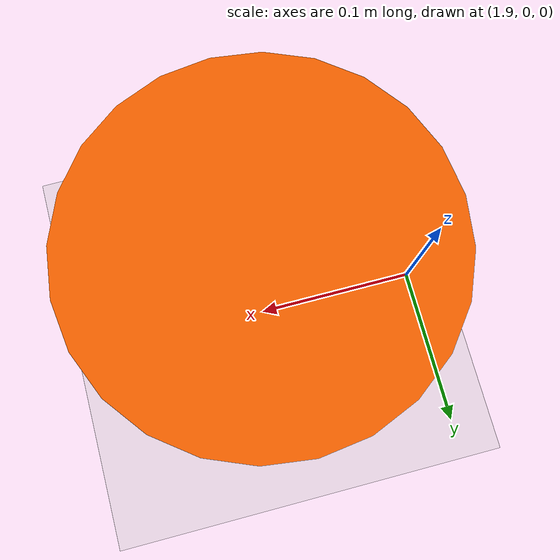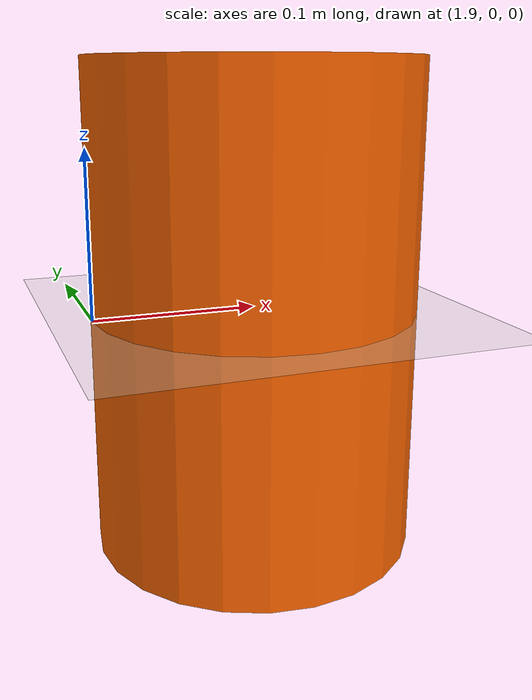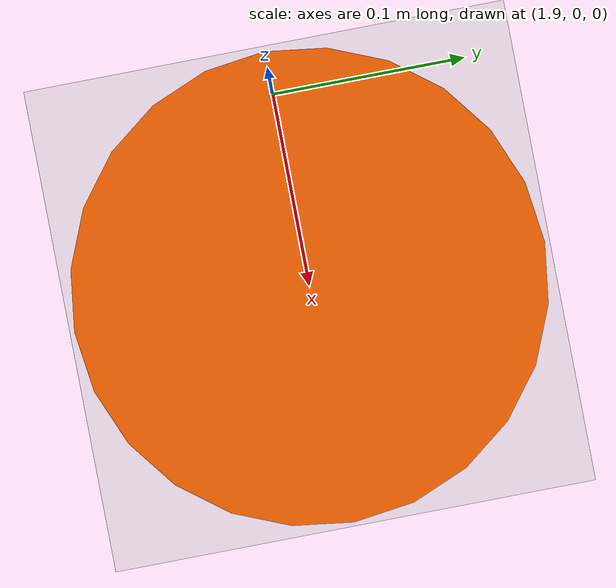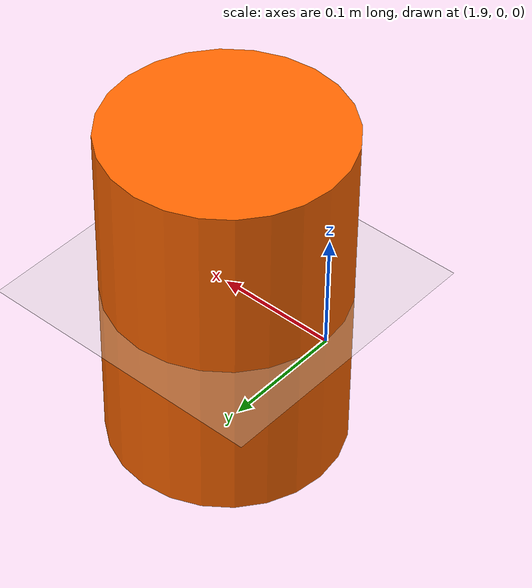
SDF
<?xml version="1.0" ?>
<sdf version="1.6">
  <world name="default">

    <!-- Common ground plane and sun -->
    <include>
      <uri>model://ground_plane</uri>
    </include>
    <include>
      <uri>model://sun</uri>
    </include>

    <!-- Orange Cone Model -->
    <model name="orange_cone">
      <static>true</static>
      <pose>2 0 0 0 0 0</pose>
      <link name="link">
        <collision name="collision">
          <geometry>
            <cylinder>
              <radius>0.1</radius>
              <length>0.3</length>
            </cylinder>
          </geometry>
        </collision>
        <visual name="visual">
          <geometry>
            <cylinder>
              <radius>0.1</radius>
              <length>0.3</length>
            </cylinder>
          </geometry>
          <material>
            <ambient>1 0.4 0 1</ambient>
            <diffuse>1 0.4 0 1</diffuse>
          </material>
        </visual>
      </link>
    </model>

  </world>
</sdf>
